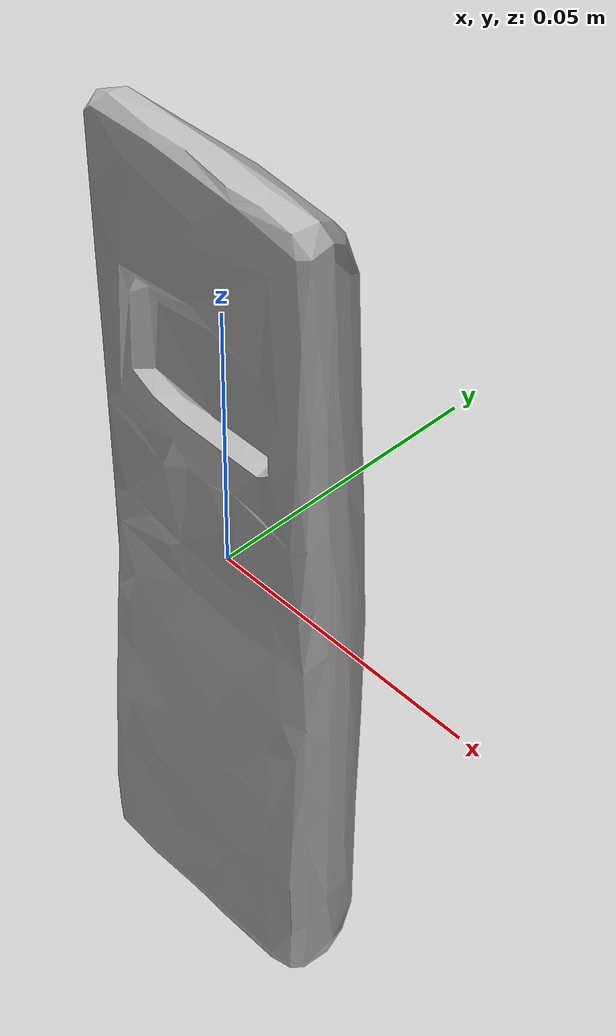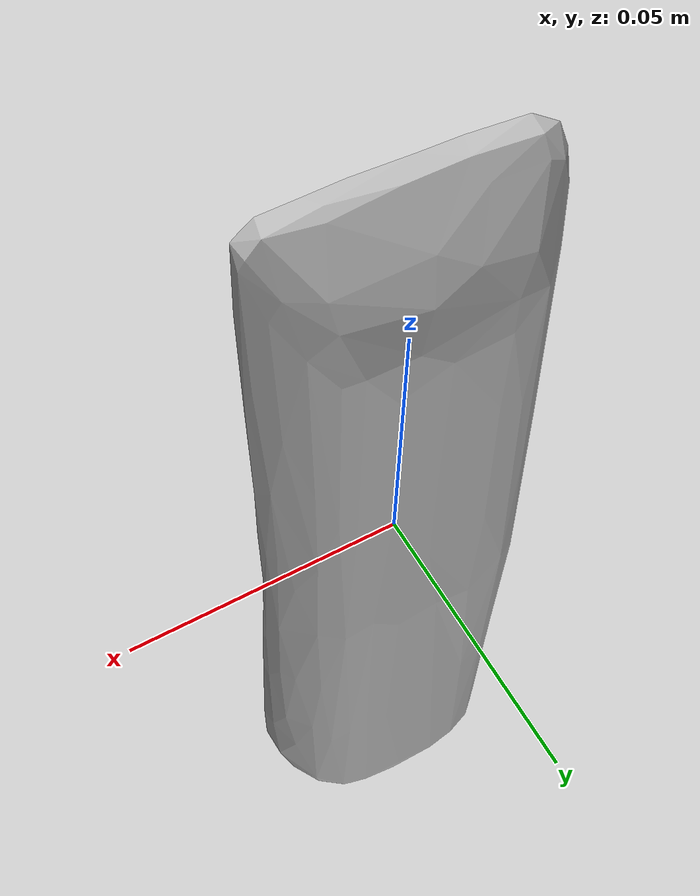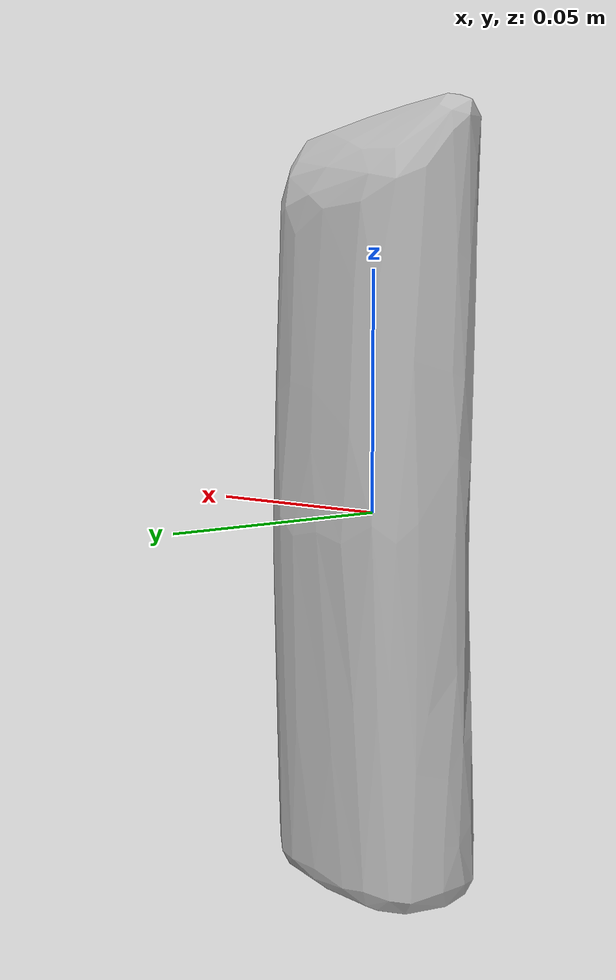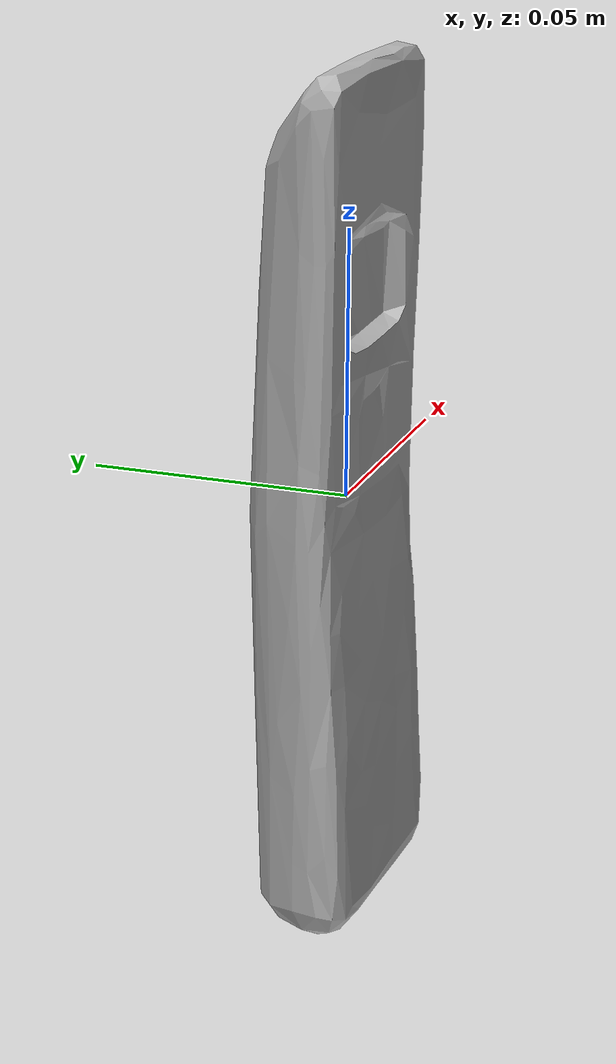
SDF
<?xml version="1.0" ?>
<sdf version="1.4">
    <model name='phone'>
      <link name='link'>
        <pose>0 0 0 0 0 0</pose>
        <inertial>
          <mass>0.1</mass>
          <inertia>
            <ixx>0.0002239</ixx>
            <ixy>0</ixy>
            <ixz>0</ixz>
            <iyy>0.0002238</iyy>
            <iyz>0</iyz>
            <izz>0.0000244</izz>
          </inertia>
        </inertial>
        <visual name='phone'>
          <pose>0.0 0.0 0.0 0 0 0</pose>
          <geometry>
            <mesh>
              <uri>model://phone/meshes/phone.dae</uri>
            </mesh>
          </geometry>

        </visual>
        <collision name='phone'>
          <pose>0.0 0.0 0.0 0 0 0</pose>
          <geometry>
            <mesh>
              <uri>model://phone/meshes/phone.dae</uri>
            </mesh>
          </geometry>
          <max_contacts>10</max_contacts>
          <surface>
            <bounce>
              <restitution_coefficient>0.2</restitution_coefficient>
              <threshold>0</threshold>
            </bounce>
            <friction>
              <ode/>
            </friction>
            <contact>
              <ode/>
            </contact>
          </surface>
        </collision>
        <velocity_decay>
          <linear>0</linear>
          <angular>0</angular>
        </velocity_decay>
        <self_collide>0</self_collide>
        <kinematic>0</kinematic>
        <gravity>1</gravity>
      </link>
      <static>0</static>
    </model>
</sdf>
